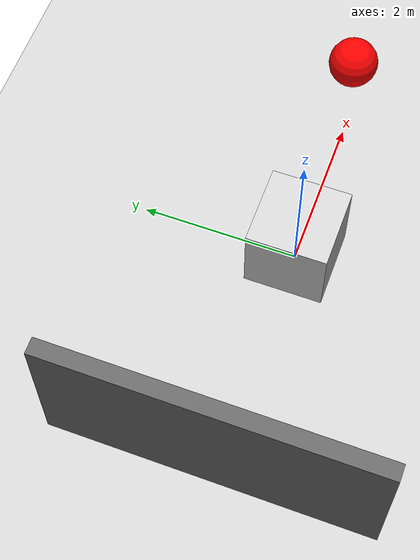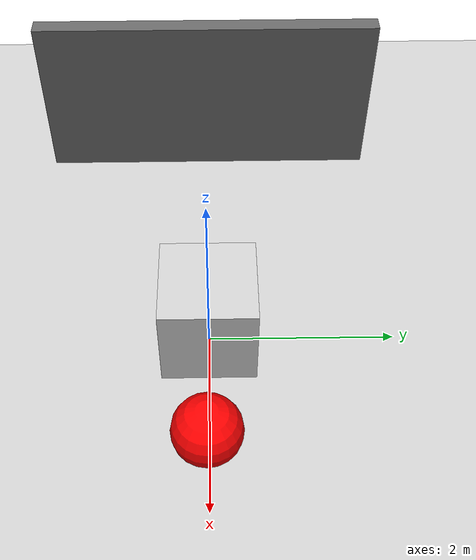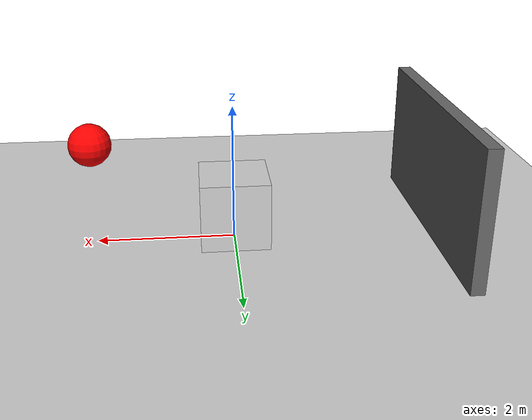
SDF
<?xml version="1.0" ?>
<sdf version="1.7">
  <world name="basic_world">
    <!-- Physics engine configuration -->
    <physics type="ode">
      <max_step_size>0.001</max_step_size>
      <real_time_factor>1.0</real_time_factor>
      <real_time_update_rate>1000.0</real_time_update_rate>
      <gravity>0 0 -9.8</gravity>
    </physics>

    <!-- Include default ground plane -->
    <include>
      <uri>model://ground_plane</uri>
    </include>

    <!-- Include default sun light -->
    <include>
      <uri>model://sun</uri>
    </include>

    <!-- Basic collision object: A box on the ground -->
    <model name="collision_box">
      <pose>0 0 0.5 0 0 0</pose>
      <link name="link">
        <!-- Visual properties -->
        <visual name="visual">
          <geometry>
            <box>
              <size>1.0 1.0 1.0</size>
            </box>
          </geometry>
          <material>
            <ambient>0.5 0.5 0.5 1</ambient>
            <diffuse>0.8 0.8 0.8 1</diffuse>
            <specular>0.1 0.1 0.1 1</specular>
          </material>
        </visual>

        <!-- Collision properties -->
        <collision name="collision">
          <geometry>
            <box>
              <size>1.0 1.0 1.0</size>
            </box>
          </geometry>
          <!-- Surface properties for collision -->
          <surface>
            <friction>
              <ode>
                <mu>1.0</mu>
                <mu2>1.0</mu2>
              </ode>
            </friction>
            <bounce>
              <restitution_coefficient>0.1</restitution_coefficient>
              <threshold>100000</threshold>
            </bounce>
            <contact>
              <ode>
                <kp>1e+10</kp>
                <kd>1</kd>
                <max_vel>100.0</max_vel>
                <min_depth>0.001</min_depth>
              </ode>
            </contact>
          </surface>
        </collision>

        <!-- Inertial properties -->
        <inertial>
          <mass>10.0</mass>
          <inertia>
            <ixx>0.833</ixx>
            <ixy>0</ixy>
            <ixz>0</ixz>
            <iyy>0.833</iyy>
            <iyz>0</iyz>
            <izz>0.833</izz>
          </inertia>
        </inertial>
      </link>
    </model>

    <!-- Another collision object: A sphere -->
    <model name="collision_sphere">
      <pose>2 0 1.5 0 0 0</pose>
      <link name="link">
        <!-- Visual properties -->
        <visual name="visual">
          <geometry>
            <sphere>
              <radius>0.3</radius>
            </sphere>
          </geometry>
          <material>
            <ambient>1 0 0 1</ambient>
            <diffuse>1 0 0 1</diffuse>
            <specular>0.1 0.1 0.1 1</specular>
          </material>
        </visual>

        <!-- Collision properties -->
        <collision name="collision">
          <geometry>
            <sphere>
              <radius>0.3</radius>
            </sphere>
          </geometry>
          <!-- Surface properties for collision -->
          <surface>
            <friction>
              <ode>
                <mu>0.5</mu>
                <mu2>0.5</mu2>
              </ode>
            </friction>
            <bounce>
              <restitution_coefficient>0.5</restitution_coefficient>
              <threshold>100000</threshold>
            </bounce>
            <contact>
              <ode>
                <kp>1e+10</kp>
                <kd>1</kd>
                <max_vel>100.0</max_vel>
                <min_depth>0.001</min_depth>
              </ode>
            </contact>
          </surface>
        </collision>

        <!-- Inertial properties -->
        <inertial>
          <mass>2.0</mass>
          <inertia>
            <ixx>0.18</ixx>
            <ixy>0</ixy>
            <ixz>0</ixz>
            <iyy>0.18</iyy>
            <iyz>0</iyz>
            <izz>0.18</izz>
          </inertia>
        </inertial>
      </link>
    </model>

    <!-- A simple wall -->
    <model name="wall">
      <pose>-3 0 1 0 0 0</pose>
      <link name="wall_link">
        <visual name="visual">
          <geometry>
            <box>
              <size>0.2 4.0 2.0</size>
            </box>
          </geometry>
          <material>
            <ambient>0.2 0.2 0.2 1</ambient>
            <diffuse>0.4 0.4 0.4 1</diffuse>
            <specular>0.1 0.1 0.1 1</specular>
          </material>
        </visual>

        <collision name="collision">
          <geometry>
            <box>
              <size>0.2 4.0 2.0</size>
            </box>
          </geometry>
          <surface>
            <friction>
              <ode>
                <mu>1.0</mu>
                <mu2>1.0</mu2>
              </ode>
            </friction>
            <contact>
              <ode>
                <kp>1e+10</kp>
                <kd>1</kd>
                <max_vel>100.0</max_vel>
                <min_depth>0.001</min_depth>
              </ode>
            </contact>
          </surface>
        </collision>

        <inertial>
          <mass>100.0</mass>
          <inertia>
            <ixx>133.33</ixx>
            <ixy>0</ixy>
            <ixz>0</ixz>
            <iyy>16.67</iyy>
            <iyz>0</iyz>
            <izz>116.67</izz>
          </inertia>
        </inertial>
      </link>
    </model>

    <!-- Optional: Add a simple humanoid model reference (will need to be defined separately) -->
  </world>
</sdf>
